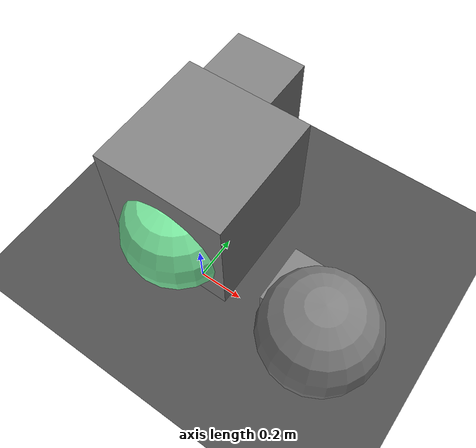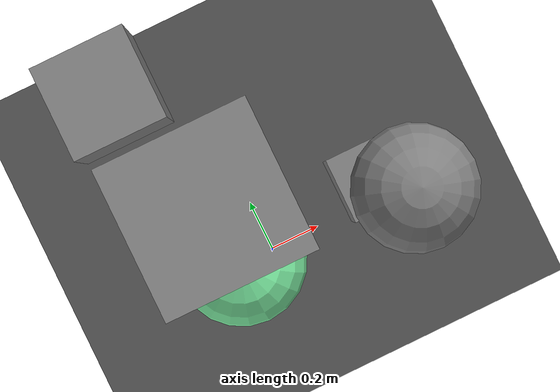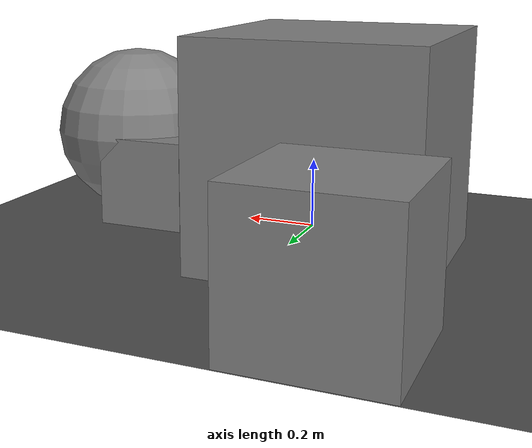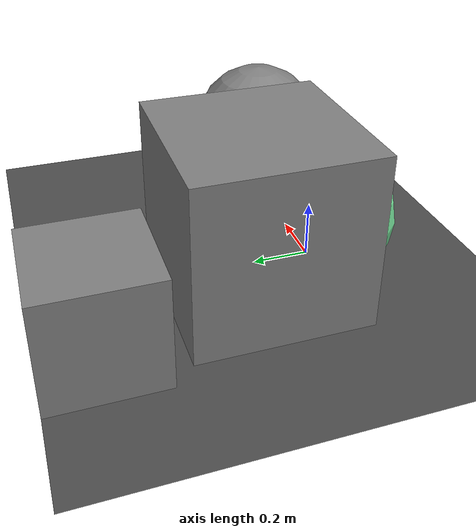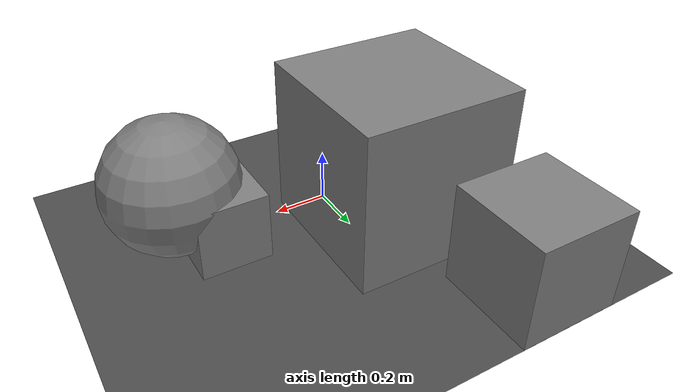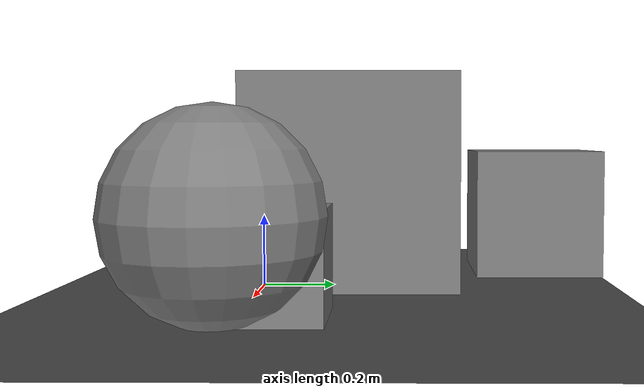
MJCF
<mujoco>
   <asset>
      <texture name="builtin_checker" builtin="checker" type="2d" rgb1="1 1 0" rgb2="0 0 1" width="200" height="200"/>
      <texture name="builtin_gradient" builtin="gradient" rgb1="0 .9 .3" rgb2="1 1 1" width="200" height="200"/>
      <texture name="builtin_flat" builtin="flat" rgb1="1 0 0" rgb2="1 0 0"  width="200" height="200"/>

      <material name="checker_mat" reflectance="0.9" texrepeat="3 3" texture="builtin_checker" texuniform="false" />
      <material name="gradient_mat" reflectance="1" texrepeat="1 1" texture="builtin_gradient" texuniform="true"/>
      <material name="flat_mat" reflectance="1" texrepeat="1 1" texture="builtin_flat" texuniform="true"/>
   </asset>

   <worldbody>
      <light diffuse=".9 .9 .9" pos="0 0 3" dir="0 0 -1"/>
     <geom type="plane" size="1 1 0.1" rgba="0.3 0.3 0.3 1"/>
<body pos="0.59 -0.02 0.25">
<joint type="free"/>
 <geom type="sphere" size="0.25 0.25 0.25" material="checker_mat" />
</body>
<body pos="-0.14 0.25 0.3">
<joint type="free"/>
 <geom type="box" size="0.3 0.3 0.3" material="checker_mat" />
</body>
<body pos="-0.12 0.02 0.25">
<joint type="free"/>
 <geom type="sphere" size="0.25 0.25 0.25" material="gradient_mat" />
</body>
<body pos="0.46 0.09 0.13">
<joint type="free"/>
 <geom type="box" size="0.13 0.13 0.13" material="checker_mat" />
</body>
<body pos="-0.32 0.81 0.19">
<joint type="free"/>
 <geom type="box" size="0.19 0.19 0.19" material="checker_mat" />
</body><camera euler="0 0 0" fovy="60" name="camera_a" pos="0 0 2"></camera>   </worldbody>
</mujoco>
